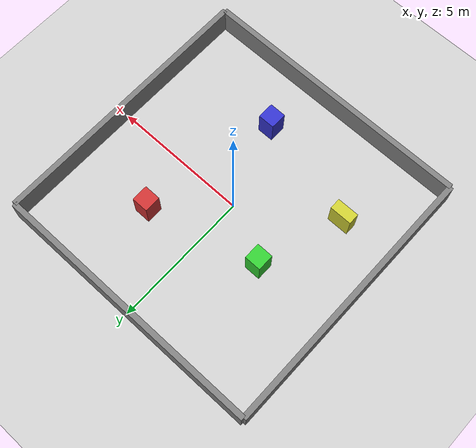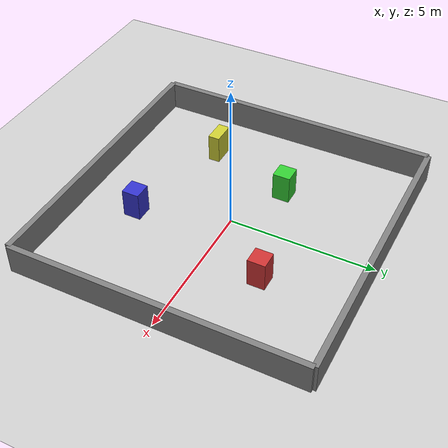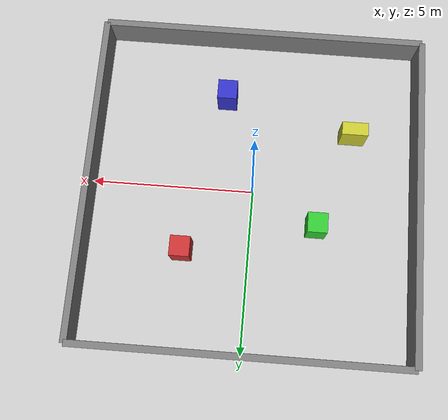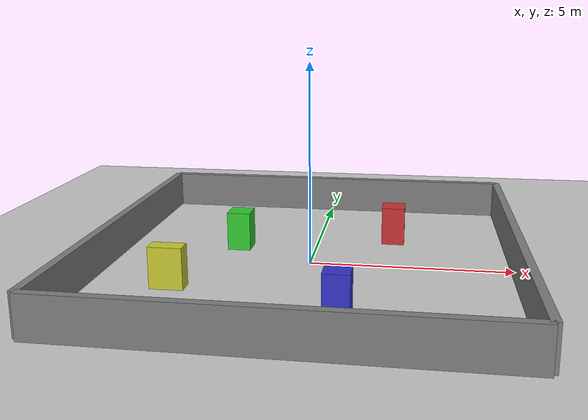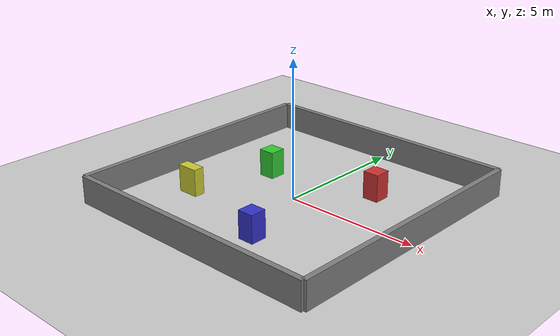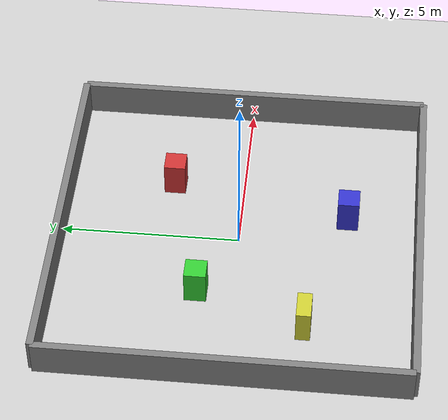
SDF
<?xml version="1.0"?>
<sdf version="1.6">
  <world name="sim_world">
    <include><uri>model://ground_plane</uri></include>
    <include><uri>model://sun</uri></include>

    <model name="wall_north"><static>true</static><pose>0 5 0.5 0 0 0</pose>
      <link name="link">
        <collision name="c"><geometry><box><size>10 0.2 1</size></box></geometry></collision>
        <visual name="v"><geometry><box><size>10 0.2 1</size></box></geometry>
          <material><ambient>0.5 0.5 0.5 1</ambient></material></visual>
      </link>
    </model>

    <model name="wall_south"><static>true</static><pose>0 -5 0.5 0 0 0</pose>
      <link name="link">
        <collision name="c"><geometry><box><size>10 0.2 1</size></box></geometry></collision>
        <visual name="v"><geometry><box><size>10 0.2 1</size></box></geometry>
          <material><ambient>0.5 0.5 0.5 1</ambient></material></visual>
      </link>
    </model>

    <model name="wall_east"><static>true</static><pose>5 0 0.5 0 0 0</pose>
      <link name="link">
        <collision name="c"><geometry><box><size>0.2 10 1</size></box></geometry></collision>
        <visual name="v"><geometry><box><size>0.2 10 1</size></box></geometry>
          <material><ambient>0.5 0.5 0.5 1</ambient></material></visual>
      </link>
    </model>

    <model name="wall_west"><static>true</static><pose>-5 0 0.5 0 0 0</pose>
      <link name="link">
        <collision name="c"><geometry><box><size>0.2 10 1</size></box></geometry></collision>
        <visual name="v"><geometry><box><size>0.2 10 1</size></box></geometry>
          <material><ambient>0.5 0.5 0.5 1</ambient></material></visual>
      </link>
    </model>

    <model name="box_1"><static>true</static><pose>2 2 0.5 0 0 0</pose>
      <link name="link">
        <collision name="c"><geometry><box><size>0.6 0.6 1</size></box></geometry></collision>
        <visual name="v"><geometry><box><size>0.6 0.6 1</size></box></geometry>
          <material><ambient>0.8 0.2 0.2 1</ambient></material></visual>
      </link>
    </model>

    <model name="box_2"><static>true</static><pose>-2 1 0.5 0 0 0</pose>
      <link name="link">
        <collision name="c"><geometry><box><size>0.6 0.6 1</size></box></geometry></collision>
        <visual name="v"><geometry><box><size>0.6 0.6 1</size></box></geometry>
          <material><ambient>0.2 0.8 0.2 1</ambient></material></visual>
      </link>
    </model>

    <model name="box_3"><static>true</static><pose>1 -3 0.5 0 0 0</pose>
      <link name="link">
        <collision name="c"><geometry><box><size>0.6 0.6 1</size></box></geometry></collision>
        <visual name="v"><geometry><box><size>0.6 0.6 1</size></box></geometry>
          <material><ambient>0.2 0.2 0.8 1</ambient></material></visual>
      </link>
    </model>

    <model name="box_4"><static>true</static><pose>-3 -2 0.5 0 0 0</pose>
      <link name="link">
        <collision name="c"><geometry><box><size>0.8 0.4 1</size></box></geometry></collision>
        <visual name="v"><geometry><box><size>0.8 0.4 1</size></box></geometry>
          <material><ambient>0.8 0.8 0.2 1</ambient></material></visual>
      </link>
    </model>

    <physics type="ode">
      <real_time_update_rate>1000.0</real_time_update_rate>
      <max_step_size>0.001</max_step_size>
      <real_time_factor>1</real_time_factor>
    </physics>
  </world>
</sdf>
